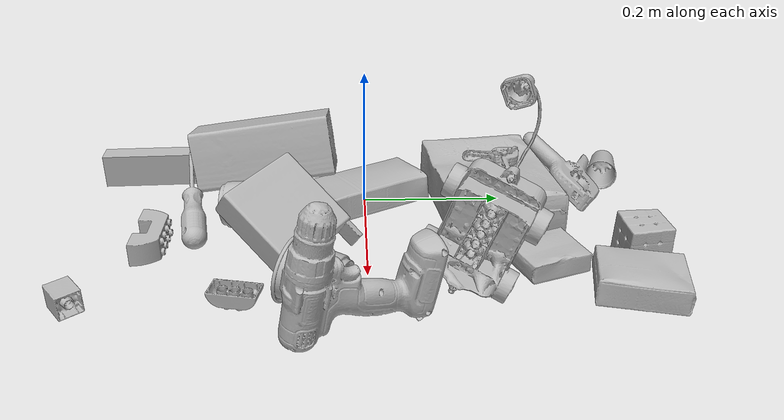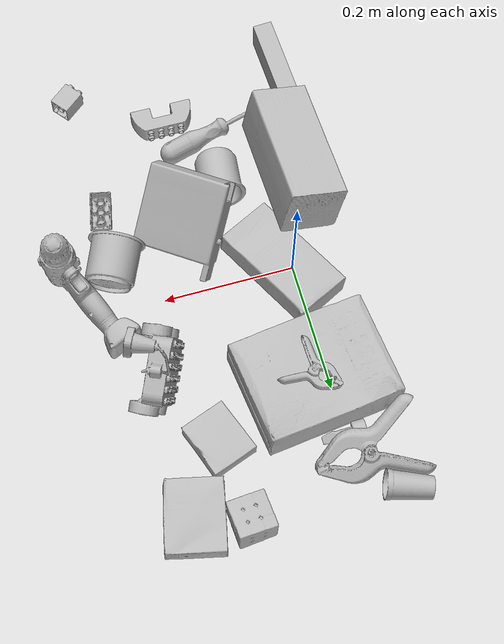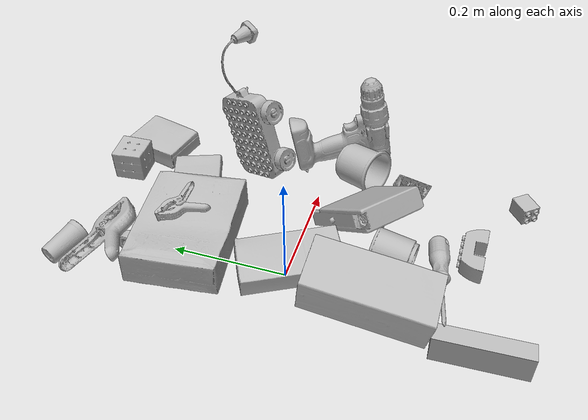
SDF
<sdf version="1.4">
  <world name="default">
    <light name="light1" type="point">
      <pose>0 0 1 0 0 0</pose>
      <diffuse>3 3 3 1</diffuse>
      <specular>3 3 3 1</specular>
    </light>
    <light name="light2" type="point">
      <pose>0 0.5 2 0 0 0</pose>
      <diffuse>1 1 1 1</diffuse>
      <specular>1 1 1 1</specular>
    </light>
    <light name="light3" type="point">
      <pose>0 0.5 2 0 0 0</pose>
      <diffuse>3 3 3 1</diffuse>
      <specular>3 3 3 1</specular>
    </light>
    <scene>
      <ambient>0.7 0.7 0.7</ambient>
    </scene>
    <model name="box21">
      <link name="link_box21">
        <collision name="default">
          <geometry>
            <mesh>
              <uri>model://cracker_box/collision_meshes/collision.obj</uri>
              <scale>1.0 1.0 1.0</scale>
            </mesh>
          </geometry>
          <surface>
            <friction>
              <ode>
                <mu>0.5</mu>
                <mu2>0.5</mu2>
              </ode>
            </friction>
          <contact>
        <ode>
            <max_vel>0</max_vel>
            <min_depth>0.0001</min_depth>
            <kp>1e8</kp>
        </ode>
    </contact></surface>
        </collision>
        <visual name="default">
          <geometry>
            <mesh>
              <uri>model://cracker_box/visual_meshes/visual.dae</uri>
              <scale>1.0 1.0 1.0</scale>
            </mesh>
          </geometry>
        </visual>
        <inertial>
          <mass>2.590176582336426</mass>
          <pose>0.0009464152390137315 0.00025434247800149024 -0.0017029535956680775 -0.0003162072774594163 -0.011106486806667554 0.0025467954652388498</pose>
          <inertia>
            <ixx>0.0065882523</ixx>
            <iyy>0.0108785</iyy>
            <izz>0.015524619</izz>
            <ixy>0</ixy>
            <ixz>0</ixz>
            <iyz>0</iyz>
          </inertia>
        </inertial>
      </link>
      <pose>0.021617937833070755 0.1828538030385971 0.03648180142045021 -0.011788102435309205 -0.007367100813793018 0.12159003048907069</pose>
    </model>
    <model name="box22">
      <link name="link_box22">
        <collision name="default">
          <geometry>
            <mesh>
              <uri>model://gelatin_box/collision_meshes/collision.obj</uri>
              <scale>1.0 1.0 1.0</scale>
            </mesh>
          </geometry>
          <surface>
            <friction>
              <ode>
                <mu>0.5</mu>
                <mu2>0.5</mu2>
              </ode>
            </friction>
          <contact>
        <ode>
            <max_vel>0</max_vel>
            <min_depth>0.0001</min_depth>
            <kp>1e8</kp>
        </ode>
    </contact></surface>
        </collision>
        <visual name="default">
          <geometry>
            <mesh>
              <uri>model://gelatin_box/visual_meshes/visual.dae</uri>
              <scale>1.0 1.0 1.0</scale>
            </mesh>
          </geometry>
        </visual>
        <inertial>
          <mass>0.25047940015792847</mass>
          <pose>0.0004319618456065655 0.00011156871914863586 -0.0003640321083366871 -0.0010503719848663328 -0.004755819155031653 0.016440561334722496</pose>
          <inertia>
            <ixx>0.00017681804</ixx>
            <iyy>0.00012630019</iyy>
            <izz>0.0002691564</izz>
            <ixy>0</ixy>
            <ixz>0</ixz>
            <iyz>0</iyz>
          </inertia>
        </inertial>
      </link>
      <pose>0.18105986714363098 0.23459474742412567 0.015168312937021255 0.0055974816030024905 -0.007304586077644454 0.34087045684477363</pose>
    </model>
    <model name="box23">
      <link name="link_box23">
        <collision name="default">
          <geometry>
            <mesh>
              <uri>model://pudding_box/collision_meshes/collision.obj</uri>
              <scale>1.0 1.0 1.0</scale>
            </mesh>
          </geometry>
          <surface>
            <friction>
              <ode>
                <mu>0.5</mu>
                <mu2>0.5</mu2>
              </ode>
            </friction>
          <contact>
        <ode>
            <max_vel>0</max_vel>
            <min_depth>0.0001</min_depth>
            <kp>1e8</kp>
        </ode>
    </contact></surface>
        </collision>
        <visual name="default">
          <geometry>
            <mesh>
              <uri>model://pudding_box/visual_meshes/visual.dae</uri>
              <scale>1.0 1.0 1.0</scale>
            </mesh>
          </geometry>
        </visual>
        <inertial>
          <mass>0.39469316601753235</mass>
          <pose>0.0004894821904599667 0.000806788622867316 -0.0005188827635720372 0.005213100892100292 -0.006603796836808699 0.020079821441474487</pose>
          <inertia>
            <ixx>0.00044618026</ixx>
            <iyy>0.00030019323</iyy>
            <izz>0.00065890176</izz>
            <ixy>0</ixy>
            <ixz>0</ixz>
            <iyz>0</iyz>
          </inertia>
        </inertial>
      </link>
      <pose>0.2440752238035202 0.33641764521598816 0.0186624713242054 3.134443799498085 -0.02532081312599458 -0.2248932852700381</pose>
    </model>
    <model name="cup1">
      <link name="link_cup1">
        <collision name="default">
          <geometry>
            <mesh>
              <uri>model://cup_small/collision_meshes/collision.obj</uri>
              <scale>1.0 1.0 1.0</scale>
            </mesh>
          </geometry>
          <surface>
            <friction>
              <ode>
                <mu>0.5</mu>
                <mu2>0.5</mu2>
              </ode>
            </friction>
          <contact>
        <ode>
            <max_vel>0</max_vel>
            <min_depth>0.0001</min_depth>
            <kp>1e8</kp>
        </ode>
    </contact></surface>
        </collision>
        <visual name="default">
          <geometry>
            <mesh>
              <uri>model://cup_small/visual_meshes/visual.dae</uri>
              <scale>1.0 1.0 1.0</scale>
            </mesh>
          </geometry>
        </visual>
        <inertial>
          <mass>0.021035347133874893</mass>
          <pose>0.0001048244594130665 -0.0003377834218554199 -0.010742821730673313 -0.011493211249102088 -0.015280240526329824 -0.5058153233609384</pose>
          <inertia>
            <ixx>1.2385285e-05</ixx>
            <iyy>1.2449176e-05</iyy>
            <izz>5.591994e-06</izz>
            <ixy>0</ixy>
            <ixz>0</ixz>
            <iyz>0</iyz>
          </inertia>
        </inertial>
      </link>
      <pose>-0.06000596284866333 0.37554189562797546 0.019966408610343933 1.2167217520251008 1.3201738963308962 0.8951485953721845</pose>
    </model>
    <model name="cup2">
      <link name="link_cup2">
        <collision name="default">
          <geometry>
            <mesh>
              <uri>model://e_cups/collision_meshes/collision.obj</uri>
              <scale>1.0 1.0 1.0</scale>
            </mesh>
          </geometry>
          <surface>
            <friction>
              <ode>
                <mu>0.5</mu>
                <mu2>0.5</mu2>
              </ode>
            </friction>
          <contact>
        <ode>
            <max_vel>0</max_vel>
            <min_depth>0.0001</min_depth>
            <kp>1e8</kp>
        </ode>
    </contact></surface>
        </collision>
        <visual name="default">
          <geometry>
            <mesh>
              <uri>model://e_cups/visual_meshes/visual.dae</uri>
              <scale>1.0 1.0 1.0</scale>
            </mesh>
          </geometry>
        </visual>
        <inertial>
          <mass>0.053841520100831985</mass>
          <pose>0.0011355747701600194 0.0028797851409763098 -0.0038829720579087734 0.69523823542345 0.08767615215021585 -0.5235238319868403</pose>
          <inertia>
            <ixx>4.7474743e-05</ixx>
            <iyy>4.9617902e-05</iyy>
            <izz>4.5391338e-05</izz>
            <ixy>0</ixy>
            <ixz>0</ixz>
            <iyz>0</iyz>
          </inertia>
        </inertial>
      </link>
      <pose>0.07096731662750244 -0.16437196731567383 0.034652840346097946 -1.4827201423320173 -0.04642972505455217 -0.12095590333174526</pose>
    </model>
    <model name="box11">
      <link name="link_box11">
        <collision name="default">
          <geometry>
            <mesh>
              <uri>model://jenga/collision_meshes/collision.obj</uri>
              <scale>1.0 1.0 1.0</scale>
            </mesh>
          </geometry>
          <surface>
            <friction>
              <ode>
                <mu>0.5</mu>
                <mu2>0.5</mu2>
              </ode>
            </friction>
          <contact>
        <ode>
            <max_vel>0</max_vel>
            <min_depth>0.0001</min_depth>
            <kp>1e8</kp>
        </ode>
    </contact></surface>
        </collision>
        <visual name="default">
          <geometry>
            <mesh>
              <uri>model://jenga/visual_meshes/visual.dae</uri>
              <scale>1.0 1.0 1.0</scale>
            </mesh>
          </geometry>
        </visual>
        <inertial>
          <mass>0.26362571120262146</mass>
          <pose>-2.502855807051674e-07 -0.00010250010382151231 -4.0923401684267446e-05 0.0 -7.342155186052628e-07 0.0</pose>
          <inertia>
            <ixx>7.295163e-05</ixx>
            <iyy>0.0004943182</iyy>
            <izz>0.0005277267</izz>
            <ixy>0</ixy>
            <ixz>0</ixz>
            <iyz>0</iyz>
          </inertia>
        </inertial>
      </link>
      <pose>-0.07107269018888474 -0.32563796639442444 0.024701930582523346 1.5775002628485826 -4.2030566728356544e-07 1.6130236466909214</pose>
    </model>
    <model name="box12">
      <link name="link_box12">
        <collision name="default">
          <geometry>
            <mesh>
              <uri>model://rubiks_cube/collision_meshes/collision.obj</uri>
              <scale>1.0 1.0 1.0</scale>
            </mesh>
          </geometry>
          <surface>
            <friction>
              <ode>
                <mu>0.5</mu>
                <mu2>0.5</mu2>
              </ode>
            </friction>
          <contact>
        <ode>
            <max_vel>0</max_vel>
            <min_depth>0.0001</min_depth>
            <kp>1e8</kp>
        </ode>
    </contact></surface>
        </collision>
        <visual name="default">
          <geometry>
            <mesh>
              <uri>model://rubiks_cube/visual_meshes/visual.dae</uri>
              <scale>1.0 1.0 1.0</scale>
            </mesh>
          </geometry>
        </visual>
        <inertial>
          <mass>0.2476155012845993</mass>
          <pose>2.6721041649580002e-05 5.256966323941015e-05 -7.2643156272533815e-06 -0.05467269607811095 -0.09813983501015876 -0.034455733913541106</pose>
          <inertia>
            <ixx>0.00013682418</ixx>
            <iyy>0.0001361861</iyy>
            <izz>0.00013795799</izz>
            <ixy>0</ixy>
            <ixz>0</ixz>
            <iyz>0</iyz>
          </inertia>
        </inertial>
      </link>
      <pose>0.1680745929479599 0.362050324678421 0.029273612424731255 1.5698453344602208 -0.021674824545796254 1.6553307077305621</pose>
    </model>
    <model name="box13">
      <link name="link_box13">
        <collision name="default">
          <geometry>
            <mesh>
              <uri>model://sugar_box/collision_meshes/collision.obj</uri>
              <scale>1.0 1.0 1.0</scale>
            </mesh>
          </geometry>
          <surface>
            <friction>
              <ode>
                <mu>0.5</mu>
                <mu2>0.5</mu2>
              </ode>
            </friction>
          <contact>
        <ode>
            <max_vel>0</max_vel>
            <min_depth>0.0001</min_depth>
            <kp>1e8</kp>
        </ode>
    </contact></surface>
        </collision>
        <visual name="default">
          <geometry>
            <mesh>
              <uri>model://sugar_box/visual_meshes/visual.dae</uri>
              <scale>1.0 1.0 1.0</scale>
            </mesh>
          </geometry>
        </visual>
        <inertial>
          <mass>0.6861893534660339</mass>
          <pose>0.0010343727190047503 3.849109634757042e-05 -0.0003636480250861496 -0.00040462627129080113 0.001050663522124822 0.0026153787889376494</pose>
          <inertia>
            <ixx>0.0005717311</ixx>
            <iyy>0.0018479523</iyy>
            <izz>0.0022122194</izz>
            <ixy>0</ixy>
            <ixz>0</ixz>
            <iyz>0</iyz>
          </inertia>
        </inertial>
      </link>
      <pose>0.01566888578236103 -0.0026540143880993128 0.023944223299622536 3.0332889444094686 -0.00045091923897208467 2.0682218983318648</pose>
    </model>
    <model name="box14">
      <link name="link_box14">
        <collision name="default">
          <geometry>
            <mesh>
              <uri>model://wood_block/collision_meshes/collision.obj</uri>
              <scale>1.0 1.0 1.0</scale>
            </mesh>
          </geometry>
          <surface>
            <friction>
              <ode>
                <mu>0.5</mu>
                <mu2>0.5</mu2>
              </ode>
            </friction>
          <contact>
        <ode>
            <max_vel>0</max_vel>
            <min_depth>0.0001</min_depth>
            <kp>1e8</kp>
        </ode>
    </contact></surface>
        </collision>
        <visual name="default">
          <geometry>
            <mesh>
              <uri>model://wood_block/visual_meshes/visual.dae</uri>
              <scale>1.0 1.0 1.0</scale>
            </mesh>
          </geometry>
        </visual>
        <inertial>
          <mass>2.2081377506256104</mass>
          <pose>-5.813315965497168e-06 -0.000570809468626976 0.00026408585836179554 -0.052206634003801496 -0.0051926960857359 -0.00686137798931887</pose>
          <inertia>
            <ixx>0.0029548227</ixx>
            <iyy>0.009334286</iyy>
            <izz>0.0092993695</izz>
            <ixy>0</ixy>
            <ixz>0</ixz>
            <iyz>0</iyz>
          </inertia>
        </inertial>
      </link>
      <pose>-0.04374479502439499 -0.1490911841392517 0.06547731161117554 1.3286378332348798 -0.1328975617932091 1.5908257173105969</pose>
    </model>
    <model name="cup15">
      <link name="link_cup15">
        <collision name="default">
          <geometry>
            <mesh>
              <uri>model://g_cups/collision_meshes/collision.obj</uri>
              <scale>1.0 1.0 1.0</scale>
            </mesh>
          </geometry>
          <surface>
            <friction>
              <ode>
                <mu>0.5</mu>
                <mu2>0.5</mu2>
              </ode>
            </friction>
          <contact>
        <ode>
            <max_vel>0</max_vel>
            <min_depth>0.0001</min_depth>
            <kp>1e8</kp>
        </ode>
    </contact></surface>
        </collision>
        <visual name="default">
          <geometry>
            <mesh>
              <uri>model://g_cups/visual_meshes/visual.dae</uri>
              <scale>1.0 1.0 1.0</scale>
            </mesh>
          </geometry>
        </visual>
        <inertial>
          <mass>0.09534990042448044</mass>
          <pose>-0.000794626830611378 -4.206429366604425e-05 -0.002132937079295516 -0.21382187015428292 -0.3141046168173621 0.3112040328096479</pose>
          <inertia>
            <ixx>0.00011129469</ixx>
            <iyy>0.0001109161</iyy>
            <izz>0.00011528214</izz>
            <ixy>0</ixy>
            <ixz>0</ixz>
            <iyz>0</iyz>
          </inertia>
        </inertial>
      </link>
      <pose>0.2619713246822357 -0.06438695639371872 0.039951253682374954 -1.4556859317975557 0.060250088912796027 2.7197010920670155</pose>
    </model>
    <model name="toy1">
      <link name="link_toy1">
        <collision name="default">
          <geometry>
            <mesh>
              <uri>model://a_lego_duplo/collision_meshes/collision.obj</uri>
              <scale>1.0 1.0 1.0</scale>
            </mesh>
          </geometry>
          <surface>
            <friction>
              <ode>
                <mu>0.5</mu>
                <mu2>0.5</mu2>
              </ode>
            </friction>
          <contact>
        <ode>
            <max_vel>0</max_vel>
            <min_depth>0.0001</min_depth>
            <kp>1e8</kp>
        </ode>
    </contact></surface>
        </collision>
        <visual name="default">
          <geometry>
            <mesh>
              <uri>model://a_lego_duplo/visual_meshes/visual.dae</uri>
              <scale>1.0 1.0 1.0</scale>
            </mesh>
          </geometry>
        </visual>
        <inertial>
          <mass>0.019288161769509315</mass>
          <pose>-0.00011337728938087821 0.00018517542048357427 0.00036926069878973067 -0.014116980162122142 -0.00012566491180396528 6.141847735431564e-05</pose>
          <inertia>
            <ixx>2.4728956e-06</ixx>
            <iyy>5.539828e-06</iyy>
            <izz>6.86231e-06</izz>
            <ixy>0</ixy>
            <ixz>0</ixz>
            <iyz>0</iyz>
          </inertia>
        </inertial>
      </link>
      <pose>0.25877857208251953 -0.16186082363128662 0.012124752625823021 -3.141296688147447 -0.015582177279279836 1.3514866860342725</pose>
    </model>
    <model name="toy2">
      <link name="link_toy2">
        <collision name="default">
          <geometry>
            <mesh>
              <uri>model://nine_hole_peg_test/collision_meshes/collision.obj</uri>
              <scale>1.0 1.0 1.0</scale>
            </mesh>
          </geometry>
          <surface>
            <friction>
              <ode>
                <mu>0.5</mu>
                <mu2>0.5</mu2>
              </ode>
            </friction>
          <contact>
        <ode>
            <max_vel>0</max_vel>
            <min_depth>0.0001</min_depth>
            <kp>1e8</kp>
        </ode>
    </contact></surface>
        </collision>
        <visual name="default">
          <geometry>
            <mesh>
              <uri>model://nine_hole_peg_test/visual_meshes/visual.dae</uri>
              <scale>1.0 1.0 1.0</scale>
            </mesh>
          </geometry>
        </visual>
        <inertial>
          <mass>0.4416040778160095</mass>
          <pose>-0.004617387894541025 -0.009647616185247898 2.646069333422929e-05 -0.001466680632441769 0.0007194151669294288 -0.6342433000636255</pose>
          <inertia>
            <ixx>0.00069052057</ixx>
            <iyy>0.0006447319</iyy>
            <izz>0.0012099957</izz>
            <ixy>0</ixy>
            <ixz>0</ixz>
            <iyz>0</iyz>
          </inertia>
        </inertial>
      </link>
      <pose>0.14041490852832794 -0.09781122207641602 0.052252862602472305 -2.5203467514209477 -0.09274726115757227 2.490776975006132</pose>
    </model>
    <model name="toy3">
      <link name="link_toy3">
        <collision name="default">
          <geometry>
            <mesh>
              <uri>model://b_lego_duplo/collision_meshes/collision.obj</uri>
              <scale>1.0 1.0 1.0</scale>
            </mesh>
          </geometry>
          <surface>
            <friction>
              <ode>
                <mu>0.5</mu>
                <mu2>0.5</mu2>
              </ode>
            </friction>
          <contact>
        <ode>
            <max_vel>0</max_vel>
            <min_depth>0.0001</min_depth>
            <kp>1e8</kp>
        </ode>
    </contact></surface>
        </collision>
        <visual name="default">
          <geometry>
            <mesh>
              <uri>model://b_lego_duplo/visual_meshes/visual.dae</uri>
              <scale>1.0 1.0 1.0</scale>
            </mesh>
          </geometry>
        </visual>
        <inertial>
          <mass>0.05141952633857727</mass>
          <pose>-0.00011053046182496473 -9.15286273084348e-06 0.0019294298253953457 -0.03749504579203769 -0.026353926476799443 0.45190277296460496</pose>
          <inertia>
            <ixx>1.0523392e-05</ixx>
            <iyy>1.0594135e-05</iyy>
            <izz>9.376003e-06</izz>
            <ixy>0</ixy>
            <ixz>0</ixz>
            <iyz>0</iyz>
          </inertia>
        </inertial>
      </link>
      <pose>0.2622412443161011 -0.3664974272251129 0.016152331605553627 -3.1222407768010263 1.5624462189967019 0.6951693710464428</pose>
    </model>
    <model name="toy4">
      <link name="link_toy4">
        <collision name="default">
          <geometry>
            <mesh>
              <uri>model://e_lego_duplo/collision_meshes/collision.obj</uri>
              <scale>1.0 1.0 1.0</scale>
            </mesh>
          </geometry>
          <surface>
            <friction>
              <ode>
                <mu>0.5</mu>
                <mu2>0.5</mu2>
              </ode>
            </friction>
          <contact>
        <ode>
            <max_vel>0</max_vel>
            <min_depth>0.0001</min_depth>
            <kp>1e8</kp>
        </ode>
    </contact></surface>
        </collision>
        <visual name="default">
          <geometry>
            <mesh>
              <uri>model://e_lego_duplo/visual_meshes/visual.dae</uri>
              <scale>1.0 1.0 1.0</scale>
            </mesh>
          </geometry>
        </visual>
        <inertial>
          <mass>0.10851083695888519</mass>
          <pose>0.0003256036143284291 0.00023485413112211972 0.0019521439680829644 -0.022567807713092337 -6.825385155411165e-05 -0.007625153430497312</pose>
          <inertia>
            <ixx>2.2628092e-05</ixx>
            <iyy>9.28715e-05</iyy>
            <izz>9.0438196e-05</izz>
            <ixy>0</ixy>
            <ixz>0</ixz>
            <iyz>0</iyz>
          </inertia>
        </inertial>
      </link>
      <pose>0.1264342963695526 -0.2892557978630066 0.01651747152209282 -1.5715890746008208 0.005866601277780849 -0.012166911651953214</pose>
    </model>
    <model name="toy5">
      <link name="link_toy5">
        <collision name="default">
          <geometry>
            <mesh>
              <uri>model://e_toy_airplane/collision_meshes/collision.obj</uri>
              <scale>1.0 1.0 1.0</scale>
            </mesh>
          </geometry>
          <surface>
            <friction>
              <ode>
                <mu>0.5</mu>
                <mu2>0.5</mu2>
              </ode>
            </friction>
          <contact>
        <ode>
            <max_vel>0</max_vel>
            <min_depth>0.0001</min_depth>
            <kp>1e8</kp>
        </ode>
    </contact></surface>
        </collision>
        <visual name="default">
          <geometry>
            <mesh>
              <uri>model://e_toy_airplane/visual_meshes/visual.dae</uri>
              <scale>1.0 1.0 1.0</scale>
            </mesh>
          </geometry>
        </visual>
        <inertial>
          <mass>0.028576364740729332</mass>
          <pose>0.00011740469926735386 -2.248284363304265e-05 -0.011187203228473663 0.005518470588584354 0.009228302056362008 0.15041344019646216</pose>
          <inertia>
            <ixx>8.721834e-06</ixx>
            <iyy>8.6326145e-06</iyy>
            <izz>2.6212538e-06</izz>
            <ixy>0</ixy>
            <ixz>0</ixz>
            <iyz>0</iyz>
          </inertia>
        </inertial>
      </link>
      <pose>0.004853077698498964 0.27653688192367554 0.013721100986003876 -1.7690091371070258 1.1507206871830895 -1.7625485509423122</pose>
    </model>
    <model name="toy6">
      <link name="link_toy6">
        <collision name="default">
          <geometry>
            <mesh>
              <uri>model://g_lego_duplo/collision_meshes/collision.obj</uri>
              <scale>1.0 1.0 1.0</scale>
            </mesh>
          </geometry>
          <surface>
            <friction>
              <ode>
                <mu>0.5</mu>
                <mu2>0.5</mu2>
              </ode>
            </friction>
          <contact>
        <ode>
            <max_vel>0</max_vel>
            <min_depth>0.0001</min_depth>
            <kp>1e8</kp>
        </ode>
    </contact></surface>
        </collision>
        <visual name="default">
          <geometry>
            <mesh>
              <uri>model://g_lego_duplo/visual_meshes/visual.dae</uri>
              <scale>1.0 1.0 1.0</scale>
            </mesh>
          </geometry>
        </visual>
        <inertial>
          <mass>0.2849176824092865</mass>
          <pose>-0.050047703087329865 0.0017554622609168291 0.0038806754164397717 0.010963023424049216 0.03810828912622395 -0.09653028734865207</pose>
          <inertia>
            <ixx>0.000412849</ixx>
            <iyy>0.0012481753</iyy>
            <izz>0.0015615128</izz>
            <ixy>0</ixy>
            <ixz>0</ixz>
            <iyz>0</iyz>
          </inertia>
        </inertial>
      </link>
      <pose>0.2462148666381836 0.14984208345413208 0.14556214213371277 -1.5707657499248937 -1.241744088925039 1.125007825390112</pose>
    </model>
    <model name="hardware1">
      <link name="link_hardware1">
        <collision name="default">
          <geometry>
            <mesh>
              <uri>model://large_clamp/collision_meshes/collision.obj</uri>
              <scale>1.0 1.0 1.0</scale>
            </mesh>
          </geometry>
          <surface>
            <friction>
              <ode>
                <mu>0.5</mu>
                <mu2>0.5</mu2>
              </ode>
            </friction>
          <contact>
        <ode>
            <max_vel>0</max_vel>
            <min_depth>0.0001</min_depth>
            <kp>1e8</kp>
        </ode>
    </contact></surface>
        </collision>
        <visual name="default">
          <geometry>
            <mesh>
              <uri>model://large_clamp/visual_meshes/visual.dae</uri>
              <scale>1.0 1.0 1.0</scale>
            </mesh>
          </geometry>
        </visual>
        <inertial>
          <mass>0.15191641449928284</mass>
          <pose>0.006369356997311115 0.00035856704926118255 -0.00018398075189907104 -0.0021330805905738653 0.00967158570552682 0.02663313568730603</pose>
          <inertia>
            <ixx>0.00013403181</ixx>
            <iyy>0.0002545337</iyy>
            <izz>0.00036821538</izz>
            <ixy>0</ixy>
            <ixz>0</ixz>
            <iyz>0</iyz>
          </inertia>
        </inertial>
      </link>
      <pose>-0.02102980948984623 0.3126731216907501 0.029094308614730835 -0.4584668679151698 0.0671104946923227 0.04324663676232711</pose>
    </model>
    <model name="hardware2">
      <link name="link_hardware2">
        <collision name="default">
          <geometry>
            <mesh>
              <uri>model://phillips_screwdriver/collision_meshes/collision.obj</uri>
              <scale>1.0 1.0 1.0</scale>
            </mesh>
          </geometry>
          <surface>
            <friction>
              <ode>
                <mu>0.5</mu>
                <mu2>0.5</mu2>
              </ode>
            </friction>
          <contact>
        <ode>
            <max_vel>0</max_vel>
            <min_depth>0.0001</min_depth>
            <kp>1e8</kp>
        </ode>
    </contact></surface>
        </collision>
        <visual name="default">
          <geometry>
            <mesh>
              <uri>model://phillips_screwdriver/visual_meshes/visual.dae</uri>
              <scale>1.0 1.0 1.0</scale>
            </mesh>
          </geometry>
        </visual>
        <inertial>
          <mass>0.09855502843856812</mass>
          <pose>-0.04777182266116142 0.001036230125464499 -0.00045555492397397757 -0.15717104537538515 0.005850995063257979 -0.0021567379341223374</pose>
          <inertia>
            <ixx>1.15792045e-05</ixx>
            <iyy>0.00014518296</iyy>
            <izz>0.00014530632</izz>
            <ixy>0</ixy>
            <ixz>0</ixz>
            <iyz>0</iyz>
          </inertia>
        </inertial>
      </link>
      <pose>0.042245592921972275 -0.24646538496017456 0.032833680510520935 0.6057956931837596 -0.18830000766305835 -2.966171210736393</pose>
    </model>
    <model name="hardware3">
      <link name="link_hardware3">
        <collision name="default">
          <geometry>
            <mesh>
              <uri>model://power_drill/collision_meshes/collision.obj</uri>
              <scale>1.0 1.0 1.0</scale>
            </mesh>
          </geometry>
          <surface>
            <friction>
              <ode>
                <mu>0.5</mu>
                <mu2>0.5</mu2>
              </ode>
            </friction>
          <contact>
        <ode>
            <max_vel>0</max_vel>
            <min_depth>0.0001</min_depth>
            <kp>1e8</kp>
        </ode>
    </contact></surface>
        </collision>
        <visual name="default">
          <geometry>
            <mesh>
              <uri>model://power_drill/visual_meshes/visual.dae</uri>
              <scale>1.0 1.0 1.0</scale>
            </mesh>
          </geometry>
        </visual>
        <inertial>
          <mass>0.8579708337783813</mass>
          <pose>-0.01478054840117693 0.01436943281441927 0.0012414173688739538 0.004609163561922946 0.004073017669368797 -0.18362705043487879</pose>
          <inertia>
            <ixx>0.0034962718</ixx>
            <iyy>0.0013756006</iyy>
            <izz>0.0046174442</izz>
            <ixy>0</ixy>
            <ixz>0</ixz>
            <iyz>0</iyz>
          </inertia>
        </inertial>
      </link>
      <pose>0.30975908041000366 -0.008972604759037495 0.08187840133905411 2.0362430489106718 -1.3900655525818388 1.5316705771972827</pose>
    </model>
    <model name="hardware4">
      <link name="link_hardware4">
        <collision name="default">
          <geometry>
            <mesh>
              <uri>model://medium_clamp/collision_meshes/collision.obj</uri>
              <scale>1.0 1.0 1.0</scale>
            </mesh>
          </geometry>
          <surface>
            <friction>
              <ode>
                <mu>0.5</mu>
                <mu2>0.5</mu2>
              </ode>
            </friction>
          <contact>
        <ode>
            <max_vel>0</max_vel>
            <min_depth>0.0001</min_depth>
            <kp>1e8</kp>
        </ode>
    </contact></surface>
        </collision>
        <visual name="default">
          <geometry>
            <mesh>
              <uri>model://medium_clamp/visual_meshes/visual.dae</uri>
              <scale>1.0 1.0 1.0</scale>
            </mesh>
          </geometry>
        </visual>
        <inertial>
          <mass>0.019661318510770798</mass>
          <pose>0.005390993319451809 0.0003953249251935631 -0.00012221586075611413 -0.0012269159857183107 0.002584502991641296 0.038207758549707246</pose>
          <inertia>
            <ixx>5.356451e-06</ixx>
            <iyy>7.795151e-06</iyy>
            <izz>1.2006867e-05</izz>
            <ixy>0</ixy>
            <ixz>0</ixz>
            <iyz>0</iyz>
          </inertia>
        </inertial>
      </link>
      <pose>0.02879665419459343 0.1917945295572281 0.08075963705778122 -3.095720579571575 0.13978451920594864 2.387617568828618</pose>
    </model>
  <physics type="ode">
      <max_contacts>50</max_contacts>
      <ode>
        <solver>
          <type>quick</type>
          <iters>75</iters>
        </solver>
        <constraints>
          <contact_max_correcting_vel>0</contact_max_correcting_vel>
          <contact_surface_layer>0</contact_surface_layer>
        </constraints>
      </ode>
    </physics></world>
</sdf>
